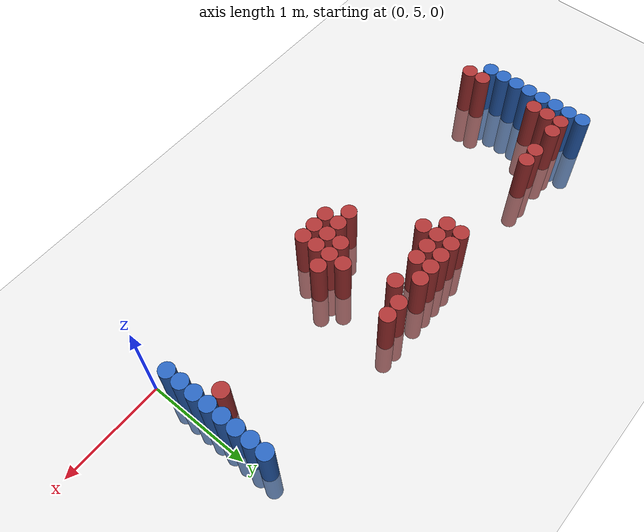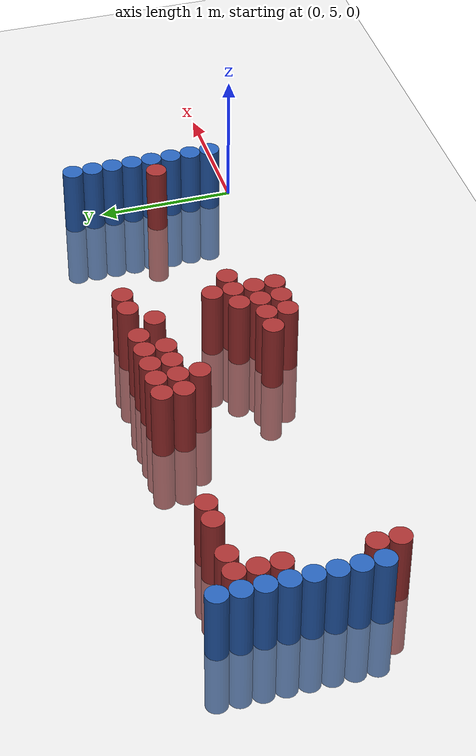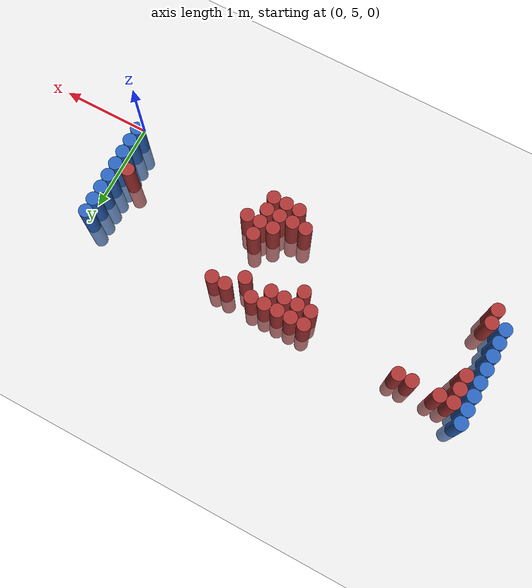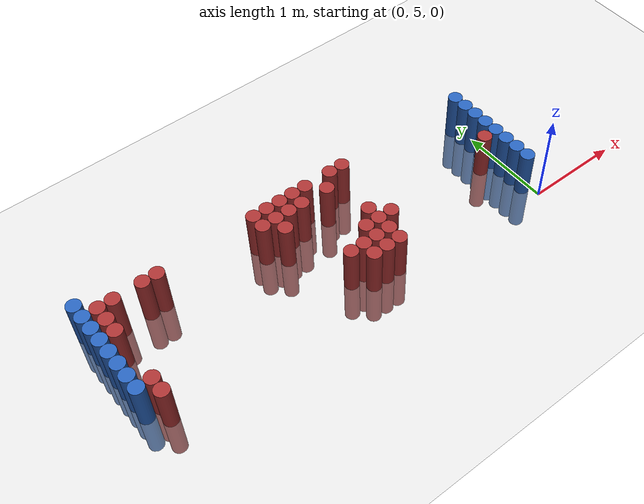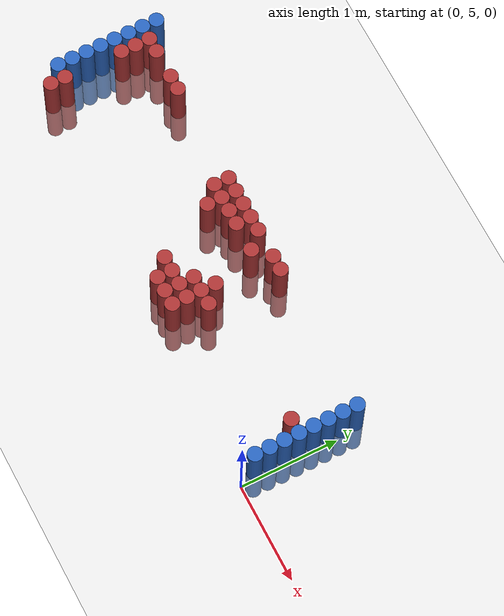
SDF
<sdf version="1.6">
 <world name="default">
  <model name="ground_plane">
   <static>1</static>
   <link name="link">
    <collision name="collision">
     <geometry><plane><normal>0 0 1</normal><size>100 100</size></plane></geometry>
     <surface><friction><ode><mu>100</mu><mu2>50</mu2></ode></friction></surface>
    </collision>
    <visual name="visual">
     <cast_shadows>0</cast_shadows>
     <geometry><plane><normal>0 0 1</normal><size>100 100</size></plane></geometry>
     <material>
      <script><uri>file://media/materials/scripts/gazebo.material</uri><name>Gazebo/Grey</name></script>
     </material>
    </visual>
   </link>
  </model>
  <model name="unit_cylinder_97">
   <static>1</static>
   <pose>-4.425000 5.325000 0.000000 0.000000 0.000000 0.000000</pose>
   <link name="link">
    <inertial>
     <mass>1</mass>
     <inertia><ixx>0.145833</ixx><ixy>0</ixy><ixz>0</ixz><iyy>0.145833</iyy><iyz>0</iyz><izz>0.125</izz></inertia>
    </inertial>
    <collision name="collision">
     <geometry><cylinder><radius>0.075000</radius><length>1</length></cylinder></geometry>
    </collision>
    <visual name="visual">
     <geometry><cylinder><radius>0.075000</radius><length>1</length></cylinder></geometry>
     <material>
      <ambient>0.152000 0.379000 0.720000 1</ambient>
      <diffuse>0.152000 0.379000 0.720000 1</diffuse>
     </material>
     <material>
      <script><name>Gazebo/Grey</name><uri>file://media/materials/scripts/gazebo.material</uri></script>
     </material>
    </visual>
   </link>
  </model>
  <model name="unit_cylinder_98">
   <static>1</static>
   <pose>-4.425000 5.475000 0.000000 0.000000 0.000000 0.000000</pose>
   <link name="link">
    <inertial>
     <mass>1</mass>
     <inertia><ixx>0.145833</ixx><ixy>0</ixy><ixz>0</ixz><iyy>0.145833</iyy><iyz>0</iyz><izz>0.125</izz></inertia>
    </inertial>
    <collision name="collision">
     <geometry><cylinder><radius>0.075000</radius><length>1</length></cylinder></geometry>
    </collision>
    <visual name="visual">
     <geometry><cylinder><radius>0.075000</radius><length>1</length></cylinder></geometry>
     <material>
      <ambient>0.152000 0.379000 0.720000 1</ambient>
      <diffuse>0.152000 0.379000 0.720000 1</diffuse>
     </material>
     <material>
      <script><name>Gazebo/Grey</name><uri>file://media/materials/scripts/gazebo.material</uri></script>
     </material>
    </visual>
   </link>
  </model>
  <model name="unit_cylinder_99">
   <static>1</static>
   <pose>-4.425000 5.625000 0.000000 0.000000 0.000000 0.000000</pose>
   <link name="link">
    <inertial>
     <mass>1</mass>
     <inertia><ixx>0.145833</ixx><ixy>0</ixy><ixz>0</ixz><iyy>0.145833</iyy><iyz>0</iyz><izz>0.125</izz></inertia>
    </inertial>
    <collision name="collision">
     <geometry><cylinder><radius>0.075000</radius><length>1</length></cylinder></geometry>
    </collision>
    <visual name="visual">
     <geometry><cylinder><radius>0.075000</radius><length>1</length></cylinder></geometry>
     <material>
      <ambient>0.152000 0.379000 0.720000 1</ambient>
      <diffuse>0.152000 0.379000 0.720000 1</diffuse>
     </material>
     <material>
      <script><name>Gazebo/Grey</name><uri>file://media/materials/scripts/gazebo.material</uri></script>
     </material>
    </visual>
   </link>
  </model>
  <model name="unit_cylinder_100">
   <static>1</static>
   <pose>-4.425000 5.775000 0.000000 0.000000 0.000000 0.000000</pose>
   <link name="link">
    <inertial>
     <mass>1</mass>
     <inertia><ixx>0.145833</ixx><ixy>0</ixy><ixz>0</ixz><iyy>0.145833</iyy><iyz>0</iyz><izz>0.125</izz></inertia>
    </inertial>
    <collision name="collision">
     <geometry><cylinder><radius>0.075000</radius><length>1</length></cylinder></geometry>
    </collision>
    <visual name="visual">
     <geometry><cylinder><radius>0.075000</radius><length>1</length></cylinder></geometry>
     <material>
      <ambient>0.152000 0.379000 0.720000 1</ambient>
      <diffuse>0.152000 0.379000 0.720000 1</diffuse>
     </material>
     <material>
      <script><name>Gazebo/Grey</name><uri>file://media/materials/scripts/gazebo.material</uri></script>
     </material>
    </visual>
   </link>
  </model>
  <model name="unit_cylinder_101">
   <static>1</static>
   <pose>-4.425000 5.925000 0.000000 0.000000 0.000000 0.000000</pose>
   <link name="link">
    <inertial>
     <mass>1</mass>
     <inertia><ixx>0.145833</ixx><ixy>0</ixy><ixz>0</ixz><iyy>0.145833</iyy><iyz>0</iyz><izz>0.125</izz></inertia>
    </inertial>
    <collision name="collision">
     <geometry><cylinder><radius>0.075000</radius><length>1</length></cylinder></geometry>
    </collision>
    <visual name="visual">
     <geometry><cylinder><radius>0.075000</radius><length>1</length></cylinder></geometry>
     <material>
      <ambient>0.152000 0.379000 0.720000 1</ambient>
      <diffuse>0.152000 0.379000 0.720000 1</diffuse>
     </material>
     <material>
      <script><name>Gazebo/Grey</name><uri>file://media/materials/scripts/gazebo.material</uri></script>
     </material>
    </visual>
   </link>
  </model>
  <model name="unit_cylinder_102">
   <static>1</static>
   <pose>-4.425000 6.075000 0.000000 0.000000 0.000000 0.000000</pose>
   <link name="link">
    <inertial>
     <mass>1</mass>
     <inertia><ixx>0.145833</ixx><ixy>0</ixy><ixz>0</ixz><iyy>0.145833</iyy><iyz>0</iyz><izz>0.125</izz></inertia>
    </inertial>
    <collision name="collision">
     <geometry><cylinder><radius>0.075000</radius><length>1</length></cylinder></geometry>
    </collision>
    <visual name="visual">
     <geometry><cylinder><radius>0.075000</radius><length>1</length></cylinder></geometry>
     <material>
      <ambient>0.152000 0.379000 0.720000 1</ambient>
      <diffuse>0.152000 0.379000 0.720000 1</diffuse>
     </material>
     <material>
      <script><name>Gazebo/Grey</name><uri>file://media/materials/scripts/gazebo.material</uri></script>
     </material>
    </visual>
   </link>
  </model>
  <model name="unit_cylinder_103">
   <static>1</static>
   <pose>-4.425000 6.225000 0.000000 0.000000 0.000000 0.000000</pose>
   <link name="link">
    <inertial>
     <mass>1</mass>
     <inertia><ixx>0.145833</ixx><ixy>0</ixy><ixz>0</ixz><iyy>0.145833</iyy><iyz>0</iyz><izz>0.125</izz></inertia>
    </inertial>
    <collision name="collision">
     <geometry><cylinder><radius>0.075000</radius><length>1</length></cylinder></geometry>
    </collision>
    <visual name="visual">
     <geometry><cylinder><radius>0.075000</radius><length>1</length></cylinder></geometry>
     <material>
      <ambient>0.152000 0.379000 0.720000 1</ambient>
      <diffuse>0.152000 0.379000 0.720000 1</diffuse>
     </material>
     <material>
      <script><name>Gazebo/Grey</name><uri>file://media/materials/scripts/gazebo.material</uri></script>
     </material>
    </visual>
   </link>
  </model>
  <model name="unit_cylinder_104">
   <static>1</static>
   <pose>-4.425000 6.375000 0.000000 0.000000 0.000000 0.000000</pose>
   <link name="link">
    <inertial>
     <mass>1</mass>
     <inertia><ixx>0.145833</ixx><ixy>0</ixy><ixz>0</ixz><iyy>0.145833</iyy><iyz>0</iyz><izz>0.125</izz></inertia>
    </inertial>
    <collision name="collision">
     <geometry><cylinder><radius>0.075000</radius><length>1</length></cylinder></geometry>
    </collision>
    <visual name="visual">
     <geometry><cylinder><radius>0.075000</radius><length>1</length></cylinder></geometry>
     <material>
      <ambient>0.152000 0.379000 0.720000 1</ambient>
      <diffuse>0.152000 0.379000 0.720000 1</diffuse>
     </material>
     <material>
      <script><name>Gazebo/Grey</name><uri>file://media/materials/scripts/gazebo.material</uri></script>
     </material>
    </visual>
   </link>
  </model>
  <model name="unit_cylinder_126">
   <static>1</static>
   <pose>-4.275000 5.175000 0.000000 0.000000 0.000000 0.000000</pose>
   <link name="link">
    <inertial>
     <mass>1</mass>
     <inertia><ixx>0.145833</ixx><ixy>0</ixy><ixz>0</ixz><iyy>0.145833</iyy><iyz>0</iyz><izz>0.125</izz></inertia>
    </inertial>
    <collision name="collision">
     <geometry><cylinder><radius>0.075000</radius><length>1</length></cylinder></geometry>
    </collision>
    <visual name="visual">
     <geometry><cylinder><radius>0.075000</radius><length>1</length></cylinder></geometry>
     <material>
      <ambient>0.648000 0.192000 0.192000 1</ambient>
      <diffuse>0.648000 0.192000 0.192000 1</diffuse>
     </material>
     <material>
      <script><name>Gazebo/Grey</name><uri>file://media/materials/scripts/gazebo.material</uri></script>
     </material>
    </visual>
   </link>
  </model>
  <model name="unit_cylinder_127">
   <static>1</static>
   <pose>-4.275000 5.325000 0.000000 0.000000 0.000000 0.000000</pose>
   <link name="link">
    <inertial>
     <mass>1</mass>
     <inertia><ixx>0.145833</ixx><ixy>0</ixy><ixz>0</ixz><iyy>0.145833</iyy><iyz>0</iyz><izz>0.125</izz></inertia>
    </inertial>
    <collision name="collision">
     <geometry><cylinder><radius>0.075000</radius><length>1</length></cylinder></geometry>
    </collision>
    <visual name="visual">
     <geometry><cylinder><radius>0.075000</radius><length>1</length></cylinder></geometry>
     <material>
      <ambient>0.648000 0.192000 0.192000 1</ambient>
      <diffuse>0.648000 0.192000 0.192000 1</diffuse>
     </material>
     <material>
      <script><name>Gazebo/Grey</name><uri>file://media/materials/scripts/gazebo.material</uri></script>
     </material>
    </visual>
   </link>
  </model>
  <model name="unit_cylinder_128">
   <static>1</static>
   <pose>-4.275000 5.925000 0.000000 0.000000 0.000000 0.000000</pose>
   <link name="link">
    <inertial>
     <mass>1</mass>
     <inertia><ixx>0.145833</ixx><ixy>0</ixy><ixz>0</ixz><iyy>0.145833</iyy><iyz>0</iyz><izz>0.125</izz></inertia>
    </inertial>
    <collision name="collision">
     <geometry><cylinder><radius>0.075000</radius><length>1</length></cylinder></geometry>
    </collision>
    <visual name="visual">
     <geometry><cylinder><radius>0.075000</radius><length>1</length></cylinder></geometry>
     <material>
      <ambient>0.648000 0.192000 0.192000 1</ambient>
      <diffuse>0.648000 0.192000 0.192000 1</diffuse>
     </material>
     <material>
      <script><name>Gazebo/Grey</name><uri>file://media/materials/scripts/gazebo.material</uri></script>
     </material>
    </visual>
   </link>
  </model>
  <model name="unit_cylinder_129">
   <static>1</static>
   <pose>-4.275000 6.075000 0.000000 0.000000 0.000000 0.000000</pose>
   <link name="link">
    <inertial>
     <mass>1</mass>
     <inertia><ixx>0.145833</ixx><ixy>0</ixy><ixz>0</ixz><iyy>0.145833</iyy><iyz>0</iyz><izz>0.125</izz></inertia>
    </inertial>
    <collision name="collision">
     <geometry><cylinder><radius>0.075000</radius><length>1</length></cylinder></geometry>
    </collision>
    <visual name="visual">
     <geometry><cylinder><radius>0.075000</radius><length>1</length></cylinder></geometry>
     <material>
      <ambient>0.648000 0.192000 0.192000 1</ambient>
      <diffuse>0.648000 0.192000 0.192000 1</diffuse>
     </material>
     <material>
      <script><name>Gazebo/Grey</name><uri>file://media/materials/scripts/gazebo.material</uri></script>
     </material>
    </visual>
   </link>
  </model>
  <model name="unit_cylinder_130">
   <static>1</static>
   <pose>-4.275000 6.225000 0.000000 0.000000 0.000000 0.000000</pose>
   <link name="link">
    <inertial>
     <mass>1</mass>
     <inertia><ixx>0.145833</ixx><ixy>0</ixy><ixz>0</ixz><iyy>0.145833</iyy><iyz>0</iyz><izz>0.125</izz></inertia>
    </inertial>
    <collision name="collision">
     <geometry><cylinder><radius>0.075000</radius><length>1</length></cylinder></geometry>
    </collision>
    <visual name="visual">
     <geometry><cylinder><radius>0.075000</radius><length>1</length></cylinder></geometry>
     <material>
      <ambient>0.648000 0.192000 0.192000 1</ambient>
      <diffuse>0.648000 0.192000 0.192000 1</diffuse>
     </material>
     <material>
      <script><name>Gazebo/Grey</name><uri>file://media/materials/scripts/gazebo.material</uri></script>
     </material>
    </visual>
   </link>
  </model>
  <model name="unit_cylinder_146">
   <static>1</static>
   <pose>-4.125000 6.225000 0.000000 0.000000 0.000000 0.000000</pose>
   <link name="link">
    <inertial>
     <mass>1</mass>
     <inertia><ixx>0.145833</ixx><ixy>0</ixy><ixz>0</ixz><iyy>0.145833</iyy><iyz>0</iyz><izz>0.125</izz></inertia>
    </inertial>
    <collision name="collision">
     <geometry><cylinder><radius>0.075000</radius><length>1</length></cylinder></geometry>
    </collision>
    <visual name="visual">
     <geometry><cylinder><radius>0.075000</radius><length>1</length></cylinder></geometry>
     <material>
      <ambient>0.648000 0.192000 0.192000 1</ambient>
      <diffuse>0.648000 0.192000 0.192000 1</diffuse>
     </material>
     <material>
      <script><name>Gazebo/Grey</name><uri>file://media/materials/scripts/gazebo.material</uri></script>
     </material>
    </visual>
   </link>
  </model>
  <model name="unit_cylinder_159">
   <static>1</static>
   <pose>-3.825000 6.225000 0.000000 0.000000 0.000000 0.000000</pose>
   <link name="link">
    <inertial>
     <mass>1</mass>
     <inertia><ixx>0.145833</ixx><ixy>0</ixy><ixz>0</ixz><iyy>0.145833</iyy><iyz>0</iyz><izz>0.125</izz></inertia>
    </inertial>
    <collision name="collision">
     <geometry><cylinder><radius>0.075000</radius><length>1</length></cylinder></geometry>
    </collision>
    <visual name="visual">
     <geometry><cylinder><radius>0.075000</radius><length>1</length></cylinder></geometry>
     <material>
      <ambient>0.648000 0.192000 0.192000 1</ambient>
      <diffuse>0.648000 0.192000 0.192000 1</diffuse>
     </material>
     <material>
      <script><name>Gazebo/Grey</name><uri>file://media/materials/scripts/gazebo.material</uri></script>
     </material>
    </visual>
   </link>
  </model>
  <model name="unit_cylinder_167">
   <static>1</static>
   <pose>-3.675000 6.225000 0.000000 0.000000 0.000000 0.000000</pose>
   <link name="link">
    <inertial>
     <mass>1</mass>
     <inertia><ixx>0.145833</ixx><ixy>0</ixy><ixz>0</ixz><iyy>0.145833</iyy><iyz>0</iyz><izz>0.125</izz></inertia>
    </inertial>
    <collision name="collision">
     <geometry><cylinder><radius>0.075000</radius><length>1</length></cylinder></geometry>
    </collision>
    <visual name="visual">
     <geometry><cylinder><radius>0.075000</radius><length>1</length></cylinder></geometry>
     <material>
      <ambient>0.648000 0.192000 0.192000 1</ambient>
      <diffuse>0.648000 0.192000 0.192000 1</diffuse>
     </material>
     <material>
      <script><name>Gazebo/Grey</name><uri>file://media/materials/scripts/gazebo.material</uri></script>
     </material>
    </visual>
   </link>
  </model>
  <model name="unit_cylinder_184">
   <static>1</static>
   <pose>-2.625000 6.075000 0.000000 0.000000 0.000000 0.000000</pose>
   <link name="link">
    <inertial>
     <mass>1</mass>
     <inertia><ixx>0.145833</ixx><ixy>0</ixy><ixz>0</ixz><iyy>0.145833</iyy><iyz>0</iyz><izz>0.125</izz></inertia>
    </inertial>
    <collision name="collision">
     <geometry><cylinder><radius>0.075000</radius><length>1</length></cylinder></geometry>
    </collision>
    <visual name="visual">
     <geometry><cylinder><radius>0.075000</radius><length>1</length></cylinder></geometry>
     <material>
      <ambient>0.648000 0.192000 0.192000 1</ambient>
      <diffuse>0.648000 0.192000 0.192000 1</diffuse>
     </material>
     <material>
      <script><name>Gazebo/Grey</name><uri>file://media/materials/scripts/gazebo.material</uri></script>
     </material>
    </visual>
   </link>
  </model>
  <model name="unit_cylinder_185">
   <static>1</static>
   <pose>-2.625000 6.225000 0.000000 0.000000 0.000000 0.000000</pose>
   <link name="link">
    <inertial>
     <mass>1</mass>
     <inertia><ixx>0.145833</ixx><ixy>0</ixy><ixz>0</ixz><iyy>0.145833</iyy><iyz>0</iyz><izz>0.125</izz></inertia>
    </inertial>
    <collision name="collision">
     <geometry><cylinder><radius>0.075000</radius><length>1</length></cylinder></geometry>
    </collision>
    <visual name="visual">
     <geometry><cylinder><radius>0.075000</radius><length>1</length></cylinder></geometry>
     <material>
      <ambient>0.648000 0.192000 0.192000 1</ambient>
      <diffuse>0.648000 0.192000 0.192000 1</diffuse>
     </material>
     <material>
      <script><name>Gazebo/Grey</name><uri>file://media/materials/scripts/gazebo.material</uri></script>
     </material>
    </visual>
   </link>
  </model>
  <model name="unit_cylinder_189">
   <static>1</static>
   <pose>-2.475000 5.925000 0.000000 0.000000 0.000000 0.000000</pose>
   <link name="link">
    <inertial>
     <mass>1</mass>
     <inertia><ixx>0.145833</ixx><ixy>0</ixy><ixz>0</ixz><iyy>0.145833</iyy><iyz>0</iyz><izz>0.125</izz></inertia>
    </inertial>
    <collision name="collision">
     <geometry><cylinder><radius>0.075000</radius><length>1</length></cylinder></geometry>
    </collision>
    <visual name="visual">
     <geometry><cylinder><radius>0.075000</radius><length>1</length></cylinder></geometry>
     <material>
      <ambient>0.648000 0.192000 0.192000 1</ambient>
      <diffuse>0.648000 0.192000 0.192000 1</diffuse>
     </material>
     <material>
      <script><name>Gazebo/Grey</name><uri>file://media/materials/scripts/gazebo.material</uri></script>
     </material>
    </visual>
   </link>
  </model>
  <model name="unit_cylinder_190">
   <static>1</static>
   <pose>-2.475000 6.075000 0.000000 0.000000 0.000000 0.000000</pose>
   <link name="link">
    <inertial>
     <mass>1</mass>
     <inertia><ixx>0.145833</ixx><ixy>0</ixy><ixz>0</ixz><iyy>0.145833</iyy><iyz>0</iyz><izz>0.125</izz></inertia>
    </inertial>
    <collision name="collision">
     <geometry><cylinder><radius>0.075000</radius><length>1</length></cylinder></geometry>
    </collision>
    <visual name="visual">
     <geometry><cylinder><radius>0.075000</radius><length>1</length></cylinder></geometry>
     <material>
      <ambient>0.648000 0.192000 0.192000 1</ambient>
      <diffuse>0.648000 0.192000 0.192000 1</diffuse>
     </material>
     <material>
      <script><name>Gazebo/Grey</name><uri>file://media/materials/scripts/gazebo.material</uri></script>
     </material>
    </visual>
   </link>
  </model>
  <model name="unit_cylinder_191">
   <static>1</static>
   <pose>-2.475000 6.225000 0.000000 0.000000 0.000000 0.000000</pose>
   <link name="link">
    <inertial>
     <mass>1</mass>
     <inertia><ixx>0.145833</ixx><ixy>0</ixy><ixz>0</ixz><iyy>0.145833</iyy><iyz>0</iyz><izz>0.125</izz></inertia>
    </inertial>
    <collision name="collision">
     <geometry><cylinder><radius>0.075000</radius><length>1</length></cylinder></geometry>
    </collision>
    <visual name="visual">
     <geometry><cylinder><radius>0.075000</radius><length>1</length></cylinder></geometry>
     <material>
      <ambient>0.648000 0.192000 0.192000 1</ambient>
      <diffuse>0.648000 0.192000 0.192000 1</diffuse>
     </material>
     <material>
      <script><name>Gazebo/Grey</name><uri>file://media/materials/scripts/gazebo.material</uri></script>
     </material>
    </visual>
   </link>
  </model>
  <model name="unit_cylinder_193">
   <static>1</static>
   <pose>-2.325000 6.075000 0.000000 0.000000 0.000000 0.000000</pose>
   <link name="link">
    <inertial>
     <mass>1</mass>
     <inertia><ixx>0.145833</ixx><ixy>0</ixy><ixz>0</ixz><iyy>0.145833</iyy><iyz>0</iyz><izz>0.125</izz></inertia>
    </inertial>
    <collision name="collision">
     <geometry><cylinder><radius>0.075000</radius><length>1</length></cylinder></geometry>
    </collision>
    <visual name="visual">
     <geometry><cylinder><radius>0.075000</radius><length>1</length></cylinder></geometry>
     <material>
      <ambient>0.648000 0.192000 0.192000 1</ambient>
      <diffuse>0.648000 0.192000 0.192000 1</diffuse>
     </material>
     <material>
      <script><name>Gazebo/Grey</name><uri>file://media/materials/scripts/gazebo.material</uri></script>
     </material>
    </visual>
   </link>
  </model>
  <model name="unit_cylinder_194">
   <static>1</static>
   <pose>-2.325000 6.225000 0.000000 0.000000 0.000000 0.000000</pose>
   <link name="link">
    <inertial>
     <mass>1</mass>
     <inertia><ixx>0.145833</ixx><ixy>0</ixy><ixz>0</ixz><iyy>0.145833</iyy><iyz>0</iyz><izz>0.125</izz></inertia>
    </inertial>
    <collision name="collision">
     <geometry><cylinder><radius>0.075000</radius><length>1</length></cylinder></geometry>
    </collision>
    <visual name="visual">
     <geometry><cylinder><radius>0.075000</radius><length>1</length></cylinder></geometry>
     <material>
      <ambient>0.648000 0.192000 0.192000 1</ambient>
      <diffuse>0.648000 0.192000 0.192000 1</diffuse>
     </material>
     <material>
      <script><name>Gazebo/Grey</name><uri>file://media/materials/scripts/gazebo.material</uri></script>
     </material>
    </visual>
   </link>
  </model>
  <model name="unit_cylinder_195">
   <static>1</static>
   <pose>-2.175000 5.325000 0.000000 0.000000 0.000000 0.000000</pose>
   <link name="link">
    <inertial>
     <mass>1</mass>
     <inertia><ixx>0.145833</ixx><ixy>0</ixy><ixz>0</ixz><iyy>0.145833</iyy><iyz>0</iyz><izz>0.125</izz></inertia>
    </inertial>
    <collision name="collision">
     <geometry><cylinder><radius>0.075000</radius><length>1</length></cylinder></geometry>
    </collision>
    <visual name="visual">
     <geometry><cylinder><radius>0.075000</radius><length>1</length></cylinder></geometry>
     <material>
      <ambient>0.648000 0.192000 0.192000 1</ambient>
      <diffuse>0.648000 0.192000 0.192000 1</diffuse>
     </material>
     <material>
      <script><name>Gazebo/Grey</name><uri>file://media/materials/scripts/gazebo.material</uri></script>
     </material>
    </visual>
   </link>
  </model>
  <model name="unit_cylinder_196">
   <static>1</static>
   <pose>-2.175000 6.075000 0.000000 0.000000 0.000000 0.000000</pose>
   <link name="link">
    <inertial>
     <mass>1</mass>
     <inertia><ixx>0.145833</ixx><ixy>0</ixy><ixz>0</ixz><iyy>0.145833</iyy><iyz>0</iyz><izz>0.125</izz></inertia>
    </inertial>
    <collision name="collision">
     <geometry><cylinder><radius>0.075000</radius><length>1</length></cylinder></geometry>
    </collision>
    <visual name="visual">
     <geometry><cylinder><radius>0.075000</radius><length>1</length></cylinder></geometry>
     <material>
      <ambient>0.648000 0.192000 0.192000 1</ambient>
      <diffuse>0.648000 0.192000 0.192000 1</diffuse>
     </material>
     <material>
      <script><name>Gazebo/Grey</name><uri>file://media/materials/scripts/gazebo.material</uri></script>
     </material>
    </visual>
   </link>
  </model>
  <model name="unit_cylinder_197">
   <static>1</static>
   <pose>-2.175000 6.225000 0.000000 0.000000 0.000000 0.000000</pose>
   <link name="link">
    <inertial>
     <mass>1</mass>
     <inertia><ixx>0.145833</ixx><ixy>0</ixy><ixz>0</ixz><iyy>0.145833</iyy><iyz>0</iyz><izz>0.125</izz></inertia>
    </inertial>
    <collision name="collision">
     <geometry><cylinder><radius>0.075000</radius><length>1</length></cylinder></geometry>
    </collision>
    <visual name="visual">
     <geometry><cylinder><radius>0.075000</radius><length>1</length></cylinder></geometry>
     <material>
      <ambient>0.648000 0.192000 0.192000 1</ambient>
      <diffuse>0.648000 0.192000 0.192000 1</diffuse>
     </material>
     <material>
      <script><name>Gazebo/Grey</name><uri>file://media/materials/scripts/gazebo.material</uri></script>
     </material>
    </visual>
   </link>
  </model>
  <model name="unit_cylinder_198">
   <static>1</static>
   <pose>-2.025000 5.175000 0.000000 0.000000 0.000000 0.000000</pose>
   <link name="link">
    <inertial>
     <mass>1</mass>
     <inertia><ixx>0.145833</ixx><ixy>0</ixy><ixz>0</ixz><iyy>0.145833</iyy><iyz>0</iyz><izz>0.125</izz></inertia>
    </inertial>
    <collision name="collision">
     <geometry><cylinder><radius>0.075000</radius><length>1</length></cylinder></geometry>
    </collision>
    <visual name="visual">
     <geometry><cylinder><radius>0.075000</radius><length>1</length></cylinder></geometry>
     <material>
      <ambient>0.648000 0.192000 0.192000 1</ambient>
      <diffuse>0.648000 0.192000 0.192000 1</diffuse>
     </material>
     <material>
      <script><name>Gazebo/Grey</name><uri>file://media/materials/scripts/gazebo.material</uri></script>
     </material>
    </visual>
   </link>
  </model>
  <model name="unit_cylinder_199">
   <static>1</static>
   <pose>-2.025000 5.325000 0.000000 0.000000 0.000000 0.000000</pose>
   <link name="link">
    <inertial>
     <mass>1</mass>
     <inertia><ixx>0.145833</ixx><ixy>0</ixy><ixz>0</ixz><iyy>0.145833</iyy><iyz>0</iyz><izz>0.125</izz></inertia>
    </inertial>
    <collision name="collision">
     <geometry><cylinder><radius>0.075000</radius><length>1</length></cylinder></geometry>
    </collision>
    <visual name="visual">
     <geometry><cylinder><radius>0.075000</radius><length>1</length></cylinder></geometry>
     <material>
      <ambient>0.648000 0.192000 0.192000 1</ambient>
      <diffuse>0.648000 0.192000 0.192000 1</diffuse>
     </material>
     <material>
      <script><name>Gazebo/Grey</name><uri>file://media/materials/scripts/gazebo.material</uri></script>
     </material>
    </visual>
   </link>
  </model>
  <model name="unit_cylinder_200">
   <static>1</static>
   <pose>-2.025000 6.225000 0.000000 0.000000 0.000000 0.000000</pose>
   <link name="link">
    <inertial>
     <mass>1</mass>
     <inertia><ixx>0.145833</ixx><ixy>0</ixy><ixz>0</ixz><iyy>0.145833</iyy><iyz>0</iyz><izz>0.125</izz></inertia>
    </inertial>
    <collision name="collision">
     <geometry><cylinder><radius>0.075000</radius><length>1</length></cylinder></geometry>
    </collision>
    <visual name="visual">
     <geometry><cylinder><radius>0.075000</radius><length>1</length></cylinder></geometry>
     <material>
      <ambient>0.648000 0.192000 0.192000 1</ambient>
      <diffuse>0.648000 0.192000 0.192000 1</diffuse>
     </material>
     <material>
      <script><name>Gazebo/Grey</name><uri>file://media/materials/scripts/gazebo.material</uri></script>
     </material>
    </visual>
   </link>
  </model>
  <model name="unit_cylinder_201">
   <static>1</static>
   <pose>-1.875000 5.175000 0.000000 0.000000 0.000000 0.000000</pose>
   <link name="link">
    <inertial>
     <mass>1</mass>
     <inertia><ixx>0.145833</ixx><ixy>0</ixy><ixz>0</ixz><iyy>0.145833</iyy><iyz>0</iyz><izz>0.125</izz></inertia>
    </inertial>
    <collision name="collision">
     <geometry><cylinder><radius>0.075000</radius><length>1</length></cylinder></geometry>
    </collision>
    <visual name="visual">
     <geometry><cylinder><radius>0.075000</radius><length>1</length></cylinder></geometry>
     <material>
      <ambient>0.648000 0.192000 0.192000 1</ambient>
      <diffuse>0.648000 0.192000 0.192000 1</diffuse>
     </material>
     <material>
      <script><name>Gazebo/Grey</name><uri>file://media/materials/scripts/gazebo.material</uri></script>
     </material>
    </visual>
   </link>
  </model>
  <model name="unit_cylinder_202">
   <static>1</static>
   <pose>-1.875000 5.325000 0.000000 0.000000 0.000000 0.000000</pose>
   <link name="link">
    <inertial>
     <mass>1</mass>
     <inertia><ixx>0.145833</ixx><ixy>0</ixy><ixz>0</ixz><iyy>0.145833</iyy><iyz>0</iyz><izz>0.125</izz></inertia>
    </inertial>
    <collision name="collision">
     <geometry><cylinder><radius>0.075000</radius><length>1</length></cylinder></geometry>
    </collision>
    <visual name="visual">
     <geometry><cylinder><radius>0.075000</radius><length>1</length></cylinder></geometry>
     <material>
      <ambient>0.648000 0.192000 0.192000 1</ambient>
      <diffuse>0.648000 0.192000 0.192000 1</diffuse>
     </material>
     <material>
      <script><name>Gazebo/Grey</name><uri>file://media/materials/scripts/gazebo.material</uri></script>
     </material>
    </visual>
   </link>
  </model>
  <model name="unit_cylinder_203">
   <static>1</static>
   <pose>-1.875000 5.475000 0.000000 0.000000 0.000000 0.000000</pose>
   <link name="link">
    <inertial>
     <mass>1</mass>
     <inertia><ixx>0.145833</ixx><ixy>0</ixy><ixz>0</ixz><iyy>0.145833</iyy><iyz>0</iyz><izz>0.125</izz></inertia>
    </inertial>
    <collision name="collision">
     <geometry><cylinder><radius>0.075000</radius><length>1</length></cylinder></geometry>
    </collision>
    <visual name="visual">
     <geometry><cylinder><radius>0.075000</radius><length>1</length></cylinder></geometry>
     <material>
      <ambient>0.648000 0.192000 0.192000 1</ambient>
      <diffuse>0.648000 0.192000 0.192000 1</diffuse>
     </material>
     <material>
      <script><name>Gazebo/Grey</name><uri>file://media/materials/scripts/gazebo.material</uri></script>
     </material>
    </visual>
   </link>
  </model>
  <model name="unit_cylinder_204">
   <static>1</static>
   <pose>-1.875000 6.075000 0.000000 0.000000 0.000000 0.000000</pose>
   <link name="link">
    <inertial>
     <mass>1</mass>
     <inertia><ixx>0.145833</ixx><ixy>0</ixy><ixz>0</ixz><iyy>0.145833</iyy><iyz>0</iyz><izz>0.125</izz></inertia>
    </inertial>
    <collision name="collision">
     <geometry><cylinder><radius>0.075000</radius><length>1</length></cylinder></geometry>
    </collision>
    <visual name="visual">
     <geometry><cylinder><radius>0.075000</radius><length>1</length></cylinder></geometry>
     <material>
      <ambient>0.648000 0.192000 0.192000 1</ambient>
      <diffuse>0.648000 0.192000 0.192000 1</diffuse>
     </material>
     <material>
      <script><name>Gazebo/Grey</name><uri>file://media/materials/scripts/gazebo.material</uri></script>
     </material>
    </visual>
   </link>
  </model>
  <model name="unit_cylinder_205">
   <static>1</static>
   <pose>-1.725000 5.175000 0.000000 0.000000 0.000000 0.000000</pose>
   <link name="link">
    <inertial>
     <mass>1</mass>
     <inertia><ixx>0.145833</ixx><ixy>0</ixy><ixz>0</ixz><iyy>0.145833</iyy><iyz>0</iyz><izz>0.125</izz></inertia>
    </inertial>
    <collision name="collision">
     <geometry><cylinder><radius>0.075000</radius><length>1</length></cylinder></geometry>
    </collision>
    <visual name="visual">
     <geometry><cylinder><radius>0.075000</radius><length>1</length></cylinder></geometry>
     <material>
      <ambient>0.648000 0.192000 0.192000 1</ambient>
      <diffuse>0.648000 0.192000 0.192000 1</diffuse>
     </material>
     <material>
      <script><name>Gazebo/Grey</name><uri>file://media/materials/scripts/gazebo.material</uri></script>
     </material>
    </visual>
   </link>
  </model>
  <model name="unit_cylinder_206">
   <static>1</static>
   <pose>-1.725000 5.325000 0.000000 0.000000 0.000000 0.000000</pose>
   <link name="link">
    <inertial>
     <mass>1</mass>
     <inertia><ixx>0.145833</ixx><ixy>0</ixy><ixz>0</ixz><iyy>0.145833</iyy><iyz>0</iyz><izz>0.125</izz></inertia>
    </inertial>
    <collision name="collision">
     <geometry><cylinder><radius>0.075000</radius><length>1</length></cylinder></geometry>
    </collision>
    <visual name="visual">
     <geometry><cylinder><radius>0.075000</radius><length>1</length></cylinder></geometry>
     <material>
      <ambient>0.648000 0.192000 0.192000 1</ambient>
      <diffuse>0.648000 0.192000 0.192000 1</diffuse>
     </material>
     <material>
      <script><name>Gazebo/Grey</name><uri>file://media/materials/scripts/gazebo.material</uri></script>
     </material>
    </visual>
   </link>
  </model>
  <model name="unit_cylinder_207">
   <static>1</static>
   <pose>-1.725000 5.475000 0.000000 0.000000 0.000000 0.000000</pose>
   <link name="link">
    <inertial>
     <mass>1</mass>
     <inertia><ixx>0.145833</ixx><ixy>0</ixy><ixz>0</ixz><iyy>0.145833</iyy><iyz>0</iyz><izz>0.125</izz></inertia>
    </inertial>
    <collision name="collision">
     <geometry><cylinder><radius>0.075000</radius><length>1</length></cylinder></geometry>
    </collision>
    <visual name="visual">
     <geometry><cylinder><radius>0.075000</radius><length>1</length></cylinder></geometry>
     <material>
      <ambient>0.648000 0.192000 0.192000 1</ambient>
      <diffuse>0.648000 0.192000 0.192000 1</diffuse>
     </material>
     <material>
      <script><name>Gazebo/Grey</name><uri>file://media/materials/scripts/gazebo.material</uri></script>
     </material>
    </visual>
   </link>
  </model>
  <model name="unit_cylinder_208">
   <static>1</static>
   <pose>-1.725000 5.625000 0.000000 0.000000 0.000000 0.000000</pose>
   <link name="link">
    <inertial>
     <mass>1</mass>
     <inertia><ixx>0.145833</ixx><ixy>0</ixy><ixz>0</ixz><iyy>0.145833</iyy><iyz>0</iyz><izz>0.125</izz></inertia>
    </inertial>
    <collision name="collision">
     <geometry><cylinder><radius>0.075000</radius><length>1</length></cylinder></geometry>
    </collision>
    <visual name="visual">
     <geometry><cylinder><radius>0.075000</radius><length>1</length></cylinder></geometry>
     <material>
      <ambient>0.648000 0.192000 0.192000 1</ambient>
      <diffuse>0.648000 0.192000 0.192000 1</diffuse>
     </material>
     <material>
      <script><name>Gazebo/Grey</name><uri>file://media/materials/scripts/gazebo.material</uri></script>
     </material>
    </visual>
   </link>
  </model>
  <model name="unit_cylinder_209">
   <static>1</static>
   <pose>-1.725000 6.225000 0.000000 0.000000 0.000000 0.000000</pose>
   <link name="link">
    <inertial>
     <mass>1</mass>
     <inertia><ixx>0.145833</ixx><ixy>0</ixy><ixz>0</ixz><iyy>0.145833</iyy><iyz>0</iyz><izz>0.125</izz></inertia>
    </inertial>
    <collision name="collision">
     <geometry><cylinder><radius>0.075000</radius><length>1</length></cylinder></geometry>
    </collision>
    <visual name="visual">
     <geometry><cylinder><radius>0.075000</radius><length>1</length></cylinder></geometry>
     <material>
      <ambient>0.648000 0.192000 0.192000 1</ambient>
      <diffuse>0.648000 0.192000 0.192000 1</diffuse>
     </material>
     <material>
      <script><name>Gazebo/Grey</name><uri>file://media/materials/scripts/gazebo.material</uri></script>
     </material>
    </visual>
   </link>
  </model>
  <model name="unit_cylinder_210">
   <static>1</static>
   <pose>-1.575000 5.475000 0.000000 0.000000 0.000000 0.000000</pose>
   <link name="link">
    <inertial>
     <mass>1</mass>
     <inertia><ixx>0.145833</ixx><ixy>0</ixy><ixz>0</ixz><iyy>0.145833</iyy><iyz>0</iyz><izz>0.125</izz></inertia>
    </inertial>
    <collision name="collision">
     <geometry><cylinder><radius>0.075000</radius><length>1</length></cylinder></geometry>
    </collision>
    <visual name="visual">
     <geometry><cylinder><radius>0.075000</radius><length>1</length></cylinder></geometry>
     <material>
      <ambient>0.648000 0.192000 0.192000 1</ambient>
      <diffuse>0.648000 0.192000 0.192000 1</diffuse>
     </material>
     <material>
      <script><name>Gazebo/Grey</name><uri>file://media/materials/scripts/gazebo.material</uri></script>
     </material>
    </visual>
   </link>
  </model>
  <model name="unit_cylinder_211">
   <static>1</static>
   <pose>-1.575000 6.225000 0.000000 0.000000 0.000000 0.000000</pose>
   <link name="link">
    <inertial>
     <mass>1</mass>
     <inertia><ixx>0.145833</ixx><ixy>0</ixy><ixz>0</ixz><iyy>0.145833</iyy><iyz>0</iyz><izz>0.125</izz></inertia>
    </inertial>
    <collision name="collision">
     <geometry><cylinder><radius>0.075000</radius><length>1</length></cylinder></geometry>
    </collision>
    <visual name="visual">
     <geometry><cylinder><radius>0.075000</radius><length>1</length></cylinder></geometry>
     <material>
      <ambient>0.648000 0.192000 0.192000 1</ambient>
      <diffuse>0.648000 0.192000 0.192000 1</diffuse>
     </material>
     <material>
      <script><name>Gazebo/Grey</name><uri>file://media/materials/scripts/gazebo.material</uri></script>
     </material>
    </visual>
   </link>
  </model>
  <model name="unit_cylinder_249">
   <static>1</static>
   <pose>-0.225000 5.625000 0.000000 0.000000 0.000000 0.000000</pose>
   <link name="link">
    <inertial>
     <mass>1</mass>
     <inertia><ixx>0.145833</ixx><ixy>0</ixy><ixz>0</ixz><iyy>0.145833</iyy><iyz>0</iyz><izz>0.125</izz></inertia>
    </inertial>
    <collision name="collision">
     <geometry><cylinder><radius>0.075000</radius><length>1</length></cylinder></geometry>
    </collision>
    <visual name="visual">
     <geometry><cylinder><radius>0.075000</radius><length>1</length></cylinder></geometry>
     <material>
      <ambient>0.648000 0.192000 0.192000 1</ambient>
      <diffuse>0.648000 0.192000 0.192000 1</diffuse>
     </material>
     <material>
      <script><name>Gazebo/Grey</name><uri>file://media/materials/scripts/gazebo.material</uri></script>
     </material>
    </visual>
   </link>
  </model>
  <model name="unit_cylinder_262">
   <static>1</static>
   <pose>-0.075000 5.175000 0.000000 0.000000 0.000000 0.000000</pose>
   <link name="link">
    <inertial>
     <mass>1</mass>
     <inertia><ixx>0.145833</ixx><ixy>0</ixy><ixz>0</ixz><iyy>0.145833</iyy><iyz>0</iyz><izz>0.125</izz></inertia>
    </inertial>
    <collision name="collision">
     <geometry><cylinder><radius>0.075000</radius><length>1</length></cylinder></geometry>
    </collision>
    <visual name="visual">
     <geometry><cylinder><radius>0.075000</radius><length>1</length></cylinder></geometry>
     <material>
      <ambient>0.152000 0.379000 0.720000 1</ambient>
      <diffuse>0.152000 0.379000 0.720000 1</diffuse>
     </material>
     <material>
      <script><name>Gazebo/Grey</name><uri>file://media/materials/scripts/gazebo.material</uri></script>
     </material>
    </visual>
   </link>
  </model>
  <model name="unit_cylinder_263">
   <static>1</static>
   <pose>-0.075000 5.325000 0.000000 0.000000 0.000000 0.000000</pose>
   <link name="link">
    <inertial>
     <mass>1</mass>
     <inertia><ixx>0.145833</ixx><ixy>0</ixy><ixz>0</ixz><iyy>0.145833</iyy><iyz>0</iyz><izz>0.125</izz></inertia>
    </inertial>
    <collision name="collision">
     <geometry><cylinder><radius>0.075000</radius><length>1</length></cylinder></geometry>
    </collision>
    <visual name="visual">
     <geometry><cylinder><radius>0.075000</radius><length>1</length></cylinder></geometry>
     <material>
      <ambient>0.152000 0.379000 0.720000 1</ambient>
      <diffuse>0.152000 0.379000 0.720000 1</diffuse>
     </material>
     <material>
      <script><name>Gazebo/Grey</name><uri>file://media/materials/scripts/gazebo.material</uri></script>
     </material>
    </visual>
   </link>
  </model>
  <model name="unit_cylinder_264">
   <static>1</static>
   <pose>-0.075000 5.475000 0.000000 0.000000 0.000000 0.000000</pose>
   <link name="link">
    <inertial>
     <mass>1</mass>
     <inertia><ixx>0.145833</ixx><ixy>0</ixy><ixz>0</ixz><iyy>0.145833</iyy><iyz>0</iyz><izz>0.125</izz></inertia>
    </inertial>
    <collision name="collision">
     <geometry><cylinder><radius>0.075000</radius><length>1</length></cylinder></geometry>
    </collision>
    <visual name="visual">
     <geometry><cylinder><radius>0.075000</radius><length>1</length></cylinder></geometry>
     <material>
      <ambient>0.152000 0.379000 0.720000 1</ambient>
      <diffuse>0.152000 0.379000 0.720000 1</diffuse>
     </material>
     <material>
      <script><name>Gazebo/Grey</name><uri>file://media/materials/scripts/gazebo.material</uri></script>
     </material>
    </visual>
   </link>
  </model>
  <model name="unit_cylinder_265">
   <static>1</static>
   <pose>-0.075000 5.625000 0.000000 0.000000 0.000000 0.000000</pose>
   <link name="link">
    <inertial>
     <mass>1</mass>
     <inertia><ixx>0.145833</ixx><ixy>0</ixy><ixz>0</ixz><iyy>0.145833</iyy><iyz>0</iyz><izz>0.125</izz></inertia>
    </inertial>
    <collision name="collision">
     <geometry><cylinder><radius>0.075000</radius><length>1</length></cylinder></geometry>
    </collision>
    <visual name="visual">
     <geometry><cylinder><radius>0.075000</radius><length>1</length></cylinder></geometry>
     <material>
      <ambient>0.152000 0.379000 0.720000 1</ambient>
      <diffuse>0.152000 0.379000 0.720000 1</diffuse>
     </material>
     <material>
      <script><name>Gazebo/Grey</name><uri>file://media/materials/scripts/gazebo.material</uri></script>
     </material>
    </visual>
   </link>
  </model>
  <model name="unit_cylinder_266">
   <static>1</static>
   <pose>-0.075000 5.775000 0.000000 0.000000 0.000000 0.000000</pose>
   <link name="link">
    <inertial>
     <mass>1</mass>
     <inertia><ixx>0.145833</ixx><ixy>0</ixy><ixz>0</ixz><iyy>0.145833</iyy><iyz>0</iyz><izz>0.125</izz></inertia>
    </inertial>
    <collision name="collision">
     <geometry><cylinder><radius>0.075000</radius><length>1</length></cylinder></geometry>
    </collision>
    <visual name="visual">
     <geometry><cylinder><radius>0.075000</radius><length>1</length></cylinder></geometry>
     <material>
      <ambient>0.152000 0.379000 0.720000 1</ambient>
      <diffuse>0.152000 0.379000 0.720000 1</diffuse>
     </material>
     <material>
      <script><name>Gazebo/Grey</name><uri>file://media/materials/scripts/gazebo.material</uri></script>
     </material>
    </visual>
   </link>
  </model>
  <model name="unit_cylinder_267">
   <static>1</static>
   <pose>-0.075000 5.925000 0.000000 0.000000 0.000000 0.000000</pose>
   <link name="link">
    <inertial>
     <mass>1</mass>
     <inertia><ixx>0.145833</ixx><ixy>0</ixy><ixz>0</ixz><iyy>0.145833</iyy><iyz>0</iyz><izz>0.125</izz></inertia>
    </inertial>
    <collision name="collision">
     <geometry><cylinder><radius>0.075000</radius><length>1</length></cylinder></geometry>
    </collision>
    <visual name="visual">
     <geometry><cylinder><radius>0.075000</radius><length>1</length></cylinder></geometry>
     <material>
      <ambient>0.152000 0.379000 0.720000 1</ambient>
      <diffuse>0.152000 0.379000 0.720000 1</diffuse>
     </material>
     <material>
      <script><name>Gazebo/Grey</name><uri>file://media/materials/scripts/gazebo.material</uri></script>
     </material>
    </visual>
   </link>
  </model>
  <model name="unit_cylinder_268">
   <static>1</static>
   <pose>-0.075000 6.075000 0.000000 0.000000 0.000000 0.000000</pose>
   <link name="link">
    <inertial>
     <mass>1</mass>
     <inertia><ixx>0.145833</ixx><ixy>0</ixy><ixz>0</ixz><iyy>0.145833</iyy><iyz>0</iyz><izz>0.125</izz></inertia>
    </inertial>
    <collision name="collision">
     <geometry><cylinder><radius>0.075000</radius><length>1</length></cylinder></geometry>
    </collision>
    <visual name="visual">
     <geometry><cylinder><radius>0.075000</radius><length>1</length></cylinder></geometry>
     <material>
      <ambient>0.152000 0.379000 0.720000 1</ambient>
      <diffuse>0.152000 0.379000 0.720000 1</diffuse>
     </material>
     <material>
      <script><name>Gazebo/Grey</name><uri>file://media/materials/scripts/gazebo.material</uri></script>
     </material>
    </visual>
   </link>
  </model>
  <model name="unit_cylinder_269">
   <static>1</static>
   <pose>-0.075000 6.225000 0.000000 0.000000 0.000000 0.000000</pose>
   <link name="link">
    <inertial>
     <mass>1</mass>
     <inertia><ixx>0.145833</ixx><ixy>0</ixy><ixz>0</ixz><iyy>0.145833</iyy><iyz>0</iyz><izz>0.125</izz></inertia>
    </inertial>
    <collision name="collision">
     <geometry><cylinder><radius>0.075000</radius><length>1</length></cylinder></geometry>
    </collision>
    <visual name="visual">
     <geometry><cylinder><radius>0.075000</radius><length>1</length></cylinder></geometry>
     <material>
      <ambient>0.152000 0.379000 0.720000 1</ambient>
      <diffuse>0.152000 0.379000 0.720000 1</diffuse>
     </material>
     <material>
      <script><name>Gazebo/Grey</name><uri>file://media/materials/scripts/gazebo.material</uri></script>
     </material>
    </visual>
   </link>
  </model>
 </world>
</sdf>
